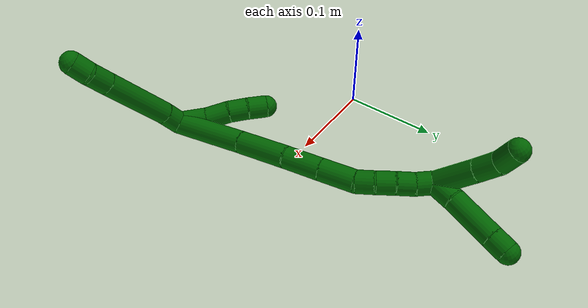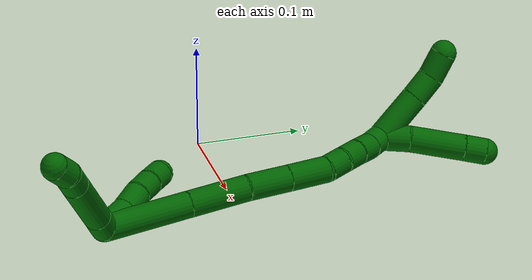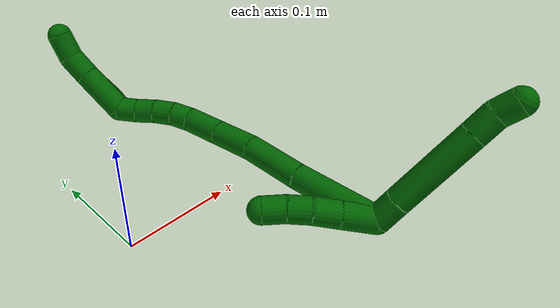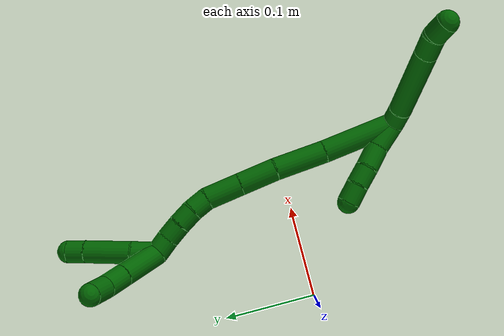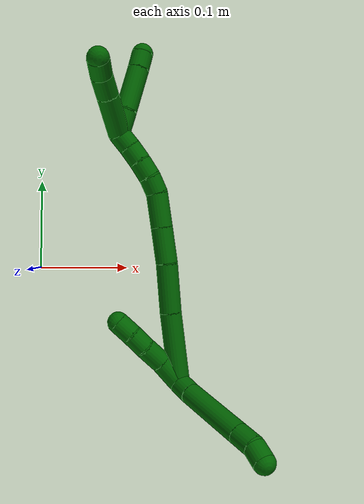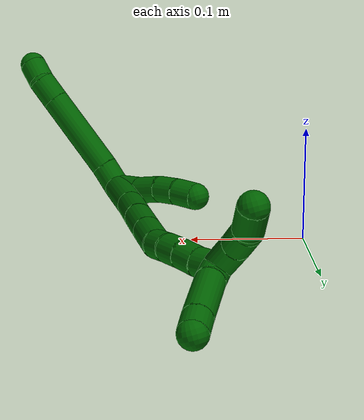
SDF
<sdf version="1.7">
 <world name="default">
  <model name="6">
   <static>0</static>
   <link name="6">
    <collision name="collision-cylinder-e_1_2_8">
     <pose>0.003053 -0.002017 0.011845 0.168653 0.248828 0.021141</pose>
     <geometry><cylinder><radius>0.0125</radius><length>0.024794</length></cylinder></geometry>
     <surface>
      <friction><ode><mu>1.16</mu><mu2>1.16</mu2><slip1>0</slip1><slip2>0</slip2></ode></friction>
      <contact><ode><kp>1e+06</kp><kd>1</kd><max_vel>0</max_vel><min_depth>0.001</min_depth></ode></contact>
     </surface>
    </collision>
    <visual name="visual-cylinder-e_1_2_8">
     <pose>0.003053 -0.002017 0.011845 0.168653 0.248828 0.021141</pose>
     <geometry><cylinder><radius>0.0125</radius><length>0.024794</length></cylinder></geometry>
     <material><ambient>0 0.392157 0.003922 1</ambient></material>
    </visual>
    <collision name="collision-cylinder-e_2_8_9">
     <pose>0.018872 -0.011158 0.061481 0.186331 0.320512 0.030204</pose>
     <geometry><cylinder><radius>0.0125</radius><length>0.081043</length></cylinder></geometry>
     <surface>
      <friction><ode><mu>1.16</mu><mu2>1.16</mu2><slip1>0</slip1><slip2>0</slip2></ode></friction>
      <contact><ode><kp>1e+06</kp><kd>1</kd><max_vel>0</max_vel><min_depth>0.001</min_depth></ode></contact>
     </surface>
    </collision>
    <visual name="visual-cylinder-e_2_8_9">
     <pose>0.018872 -0.011158 0.061481 0.186331 0.320512 0.030204</pose>
     <geometry><cylinder><radius>0.0125</radius><length>0.081043</length></cylinder></geometry>
     <material><ambient>0 0.392157 0.003922 1</ambient></material>
    </visual>
    <collision name="collision-cylinder-e_3_9_10">
     <pose>0.035406 -0.020318 0.110498 0.179441 0.318982 0.02894</pose>
     <geometry><cylinder><radius>0.0125</radius><length>0.024027</length></cylinder></geometry>
     <surface>
      <friction><ode><mu>1.16</mu><mu2>1.16</mu2><slip1>0</slip1><slip2>0</slip2></ode></friction>
      <contact><ode><kp>1e+06</kp><kd>1</kd><max_vel>0</max_vel><min_depth>0.001</min_depth></ode></contact>
     </surface>
    </collision>
    <visual name="visual-cylinder-e_3_9_10">
     <pose>0.035406 -0.020318 0.110498 0.179441 0.318982 0.02894</pose>
     <geometry><cylinder><radius>0.0125</radius><length>0.024027</length></cylinder></geometry>
     <material><ambient>0 0.392157 0.003922 1</ambient></material>
    </visual>
    <collision name="collision-cylinder-e_4_10_6">
     <pose>0.040233 -0.02653 0.130822 0.43019 0.105458 0.02306</pose>
     <geometry><cylinder><radius>0.0125</radius><length>0.020137</length></cylinder></geometry>
     <surface>
      <friction><ode><mu>1.16</mu><mu2>1.16</mu2><slip1>0</slip1><slip2>0</slip2></ode></friction>
      <contact><ode><kp>1e+06</kp><kd>1</kd><max_vel>0</max_vel><min_depth>0.001</min_depth></ode></contact>
     </surface>
    </collision>
    <visual name="visual-cylinder-e_4_10_6">
     <pose>0.040233 -0.02653 0.130822 0.43019 0.105458 0.02306</pose>
     <geometry><cylinder><radius>0.0125</radius><length>0.020137</length></cylinder></geometry>
     <material><ambient>0 0.392157 0.003922 1</ambient></material>
    </visual>
    <collision name="collision-cylinder-e_1_2_11">
     <pose>-0.007134 0.013384 -0.004615 -1.90287 -0.466763 0.643665</pose>
     <geometry><cylinder><radius>0.0125</radius><length>0.031707</length></cylinder></geometry>
     <surface>
      <friction><ode><mu>1.16</mu><mu2>1.16</mu2><slip1>0</slip1><slip2>0</slip2></ode></friction>
      <contact><ode><kp>1e+06</kp><kd>1</kd><max_vel>0</max_vel><min_depth>0.001</min_depth></ode></contact>
     </surface>
    </collision>
    <visual name="visual-cylinder-e_1_2_11">
     <pose>-0.007134 0.013384 -0.004615 -1.90287 -0.466763 0.643665</pose>
     <geometry><cylinder><radius>0.0125</radius><length>0.031707</length></cylinder></geometry>
     <material><ambient>0 0.392157 0.003922 1</ambient></material>
    </visual>
    <collision name="collision-cylinder-e_2_11_12">
     <pose>-0.021342 0.03726 -0.011686 -1.80069 -0.580955 0.720992</pose>
     <geometry><cylinder><radius>0.0125</radius><length>0.025781</length></cylinder></geometry>
     <surface>
      <friction><ode><mu>1.16</mu><mu2>1.16</mu2><slip1>0</slip1><slip2>0</slip2></ode></friction>
      <contact><ode><kp>1e+06</kp><kd>1</kd><max_vel>0</max_vel><min_depth>0.001</min_depth></ode></contact>
     </surface>
    </collision>
    <visual name="visual-cylinder-e_2_11_12">
     <pose>-0.021342 0.03726 -0.011686 -1.80069 -0.580955 0.720992</pose>
     <geometry><cylinder><radius>0.0125</radius><length>0.025781</length></cylinder></geometry>
     <material><ambient>0 0.392157 0.003922 1</ambient></material>
    </visual>
    <collision name="collision-cylinder-e_3_12_13">
     <pose>-0.033847 0.056224 -0.017644 -1.96284 -0.534771 0.777676</pose>
     <geometry><cylinder><radius>0.0125</radius><length>0.021309</length></cylinder></geometry>
     <surface>
      <friction><ode><mu>1.16</mu><mu2>1.16</mu2><slip1>0</slip1><slip2>0</slip2></ode></friction>
      <contact><ode><kp>1e+06</kp><kd>1</kd><max_vel>0</max_vel><min_depth>0.001</min_depth></ode></contact>
     </surface>
    </collision>
    <visual name="visual-cylinder-e_3_12_13">
     <pose>-0.033847 0.056224 -0.017644 -1.96284 -0.534771 0.777676</pose>
     <geometry><cylinder><radius>0.0125</radius><length>0.021309</length></cylinder></geometry>
     <material><ambient>0 0.392157 0.003922 1</ambient></material>
    </visual>
    <collision name="collision-cylinder-e_4_13_5">
     <pose>-0.044924 0.072454 -0.025654 -2.09705 -0.561752 0.92927</pose>
     <geometry><cylinder><radius>0.0125</radius><length>0.021204</length></cylinder></geometry>
     <surface>
      <friction><ode><mu>1.16</mu><mu2>1.16</mu2><slip1>0</slip1><slip2>0</slip2></ode></friction>
      <contact><ode><kp>1e+06</kp><kd>1</kd><max_vel>0</max_vel><min_depth>0.001</min_depth></ode></contact>
     </surface>
    </collision>
    <visual name="visual-cylinder-e_4_13_5">
     <pose>-0.044924 0.072454 -0.025654 -2.09705 -0.561752 0.92927</pose>
     <geometry><cylinder><radius>0.0125</radius><length>0.021204</length></cylinder></geometry>
     <material><ambient>0 0.392157 0.003922 1</ambient></material>
    </visual>
    <collision name="collision-cylinder-e_1_2_14">
     <pose>0.004983 0.039275 -0.010763 -1.83827 0.121762 -0.159477</pose>
     <geometry><cylinder><radius>0.0125</radius><length>0.082054</length></cylinder></geometry>
     <surface>
      <friction><ode><mu>1.16</mu><mu2>1.16</mu2><slip1>0</slip1><slip2>0</slip2></ode></friction>
      <contact><ode><kp>1e+06</kp><kd>1</kd><max_vel>0</max_vel><min_depth>0.001</min_depth></ode></contact>
     </surface>
    </collision>
    <visual name="visual-cylinder-e_1_2_14">
     <pose>0.004983 0.039275 -0.010763 -1.83827 0.121762 -0.159477</pose>
     <geometry><cylinder><radius>0.0125</radius><length>0.082054</length></cylinder></geometry>
     <material><ambient>0 0.392157 0.003922 1</ambient></material>
    </visual>
    <collision name="collision-cylinder-e_2_14_15">
     <pose>0.01442 0.105845 -0.028089 -1.80678 0.157346 -0.199415</pose>
     <geometry><cylinder><radius>0.0125</radius><length>0.056849</length></cylinder></geometry>
     <surface>
      <friction><ode><mu>1.16</mu><mu2>1.16</mu2><slip1>0</slip1><slip2>0</slip2></ode></friction>
      <contact><ode><kp>1e+06</kp><kd>1</kd><max_vel>0</max_vel><min_depth>0.001</min_depth></ode></contact>
     </surface>
    </collision>
    <visual name="visual-cylinder-e_2_14_15">
     <pose>0.01442 0.105845 -0.028089 -1.80678 0.157346 -0.199415</pose>
     <geometry><cylinder><radius>0.0125</radius><length>0.056849</length></cylinder></geometry>
     <material><ambient>0 0.392157 0.003922 1</ambient></material>
    </visual>
    <collision name="collision-cylinder-e_3_15_16">
     <pose>0.021273 0.152433 -0.041341 -1.9045 0.116957 -0.16415</pose>
     <geometry><cylinder><radius>0.0125</radius><length>0.041118</length></cylinder></geometry>
     <surface>
      <friction><ode><mu>1.16</mu><mu2>1.16</mu2><slip1>0</slip1><slip2>0</slip2></ode></friction>
      <contact><ode><kp>1e+06</kp><kd>1</kd><max_vel>0</max_vel><min_depth>0.001</min_depth></ode></contact>
     </surface>
    </collision>
    <visual name="visual-cylinder-e_3_15_16">
     <pose>0.021273 0.152433 -0.041341 -1.9045 0.116957 -0.16415</pose>
     <geometry><cylinder><radius>0.0125</radius><length>0.041118</length></cylinder></geometry>
     <material><ambient>0 0.392157 0.003922 1</ambient></material>
    </visual>
    <collision name="collision-cylinder-e_4_16_17">
     <pose>0.025886 0.190256 -0.054373 -1.90066 0.112555 -0.157345</pose>
     <geometry><cylinder><radius>0.0125</radius><length>0.039424</length></cylinder></geometry>
     <surface>
      <friction><ode><mu>1.16</mu><mu2>1.16</mu2><slip1>0</slip1><slip2>0</slip2></ode></friction>
      <contact><ode><kp>1e+06</kp><kd>1</kd><max_vel>0</max_vel><min_depth>0.001</min_depth></ode></contact>
     </surface>
    </collision>
    <visual name="visual-cylinder-e_4_16_17">
     <pose>0.025886 0.190256 -0.054373 -1.90066 0.112555 -0.157345</pose>
     <geometry><cylinder><radius>0.0125</radius><length>0.039424</length></cylinder></geometry>
     <material><ambient>0 0.392157 0.003922 1</ambient></material>
    </visual>
    <collision name="collision-cylinder-e_5_17_18">
     <pose>0.026315 0.218339 -0.063373 -1.84194 -0.178133 0.233956</pose>
     <geometry><cylinder><radius>0.0125</radius><length>0.020148</length></cylinder></geometry>
     <surface>
      <friction><ode><mu>1.16</mu><mu2>1.16</mu2><slip1>0</slip1><slip2>0</slip2></ode></friction>
      <contact><ode><kp>1e+06</kp><kd>1</kd><max_vel>0</max_vel><min_depth>0.001</min_depth></ode></contact>
     </surface>
    </collision>
    <visual name="visual-cylinder-e_5_17_18">
     <pose>0.026315 0.218339 -0.063373 -1.84194 -0.178133 0.233956</pose>
     <geometry><cylinder><radius>0.0125</radius><length>0.020148</length></cylinder></geometry>
     <material><ambient>0 0.392157 0.003922 1</ambient></material>
    </visual>
    <collision name="collision-cylinder-e_6_18_19">
     <pose>0.021575 0.236738 -0.069877 -1.98116 -0.297271 0.449178</pose>
     <geometry><cylinder><radius>0.0125</radius><length>0.02018</length></cylinder></geometry>
     <surface>
      <friction><ode><mu>1.16</mu><mu2>1.16</mu2><slip1>0</slip1><slip2>0</slip2></ode></friction>
      <contact><ode><kp>1e+06</kp><kd>1</kd><max_vel>0</max_vel><min_depth>0.001</min_depth></ode></contact>
     </surface>
    </collision>
    <visual name="visual-cylinder-e_6_18_19">
     <pose>0.021575 0.236738 -0.069877 -1.98116 -0.297271 0.449178</pose>
     <geometry><cylinder><radius>0.0125</radius><length>0.02018</length></cylinder></geometry>
     <material><ambient>0 0.392157 0.003922 1</ambient></material>
    </visual>
    <collision name="collision-cylinder-e_7_19_20">
     <pose>0.015349 0.253839 -0.078372 -2.08349 -0.332452 0.558915</pose>
     <geometry><cylinder><radius>0.0125</radius><length>0.02004</length></cylinder></geometry>
     <surface>
      <friction><ode><mu>1.16</mu><mu2>1.16</mu2><slip1>0</slip1><slip2>0</slip2></ode></friction>
      <contact><ode><kp>1e+06</kp><kd>1</kd><max_vel>0</max_vel><min_depth>0.001</min_depth></ode></contact>
     </surface>
    </collision>
    <visual name="visual-cylinder-e_7_19_20">
     <pose>0.015349 0.253839 -0.078372 -2.08349 -0.332452 0.558915</pose>
     <geometry><cylinder><radius>0.0125</radius><length>0.02004</length></cylinder></geometry>
     <material><ambient>0 0.392157 0.003922 1</ambient></material>
    </visual>
    <collision name="collision-cylinder-e_8_20_1">
     <pose>0.007981 0.270601 -0.086581 -1.96737 -0.41801 0.617173</pose>
     <geometry><cylinder><radius>0.0125</radius><length>0.020188</length></cylinder></geometry>
     <surface>
      <friction><ode><mu>1.16</mu><mu2>1.16</mu2><slip1>0</slip1><slip2>0</slip2></ode></friction>
      <contact><ode><kp>1e+06</kp><kd>1</kd><max_vel>0</max_vel><min_depth>0.001</min_depth></ode></contact>
     </surface>
    </collision>
    <visual name="visual-cylinder-e_8_20_1">
     <pose>0.007981 0.270601 -0.086581 -1.96737 -0.41801 0.617173</pose>
     <geometry><cylinder><radius>0.0125</radius><length>0.020188</length></cylinder></geometry>
     <material><ambient>0 0.392157 0.003922 1</ambient></material>
    </visual>
    <collision name="collision-cylinder-e_1_1_21">
     <pose>0.000388 0.302307 -0.083215 -1.28052 -0.143422 0.106924</pose>
     <geometry><cylinder><radius>0.0125</radius><length>0.048922</length></cylinder></geometry>
     <surface>
      <friction><ode><mu>1.16</mu><mu2>1.16</mu2><slip1>0</slip1><slip2>0</slip2></ode></friction>
      <contact><ode><kp>1e+06</kp><kd>1</kd><max_vel>0</max_vel><min_depth>0.001</min_depth></ode></contact>
     </surface>
    </collision>
    <visual name="visual-cylinder-e_1_1_21">
     <pose>0.000388 0.302307 -0.083215 -1.28052 -0.143422 0.106924</pose>
     <geometry><cylinder><radius>0.0125</radius><length>0.048922</length></cylinder></geometry>
     <material><ambient>0 0.392157 0.003922 1</ambient></material>
    </visual>
    <collision name="collision-cylinder-e_2_21_22">
     <pose>-0.005014 0.337499 -0.072231 -1.24477 -0.149333 0.107245</pose>
     <geometry><cylinder><radius>0.0125</radius><length>0.025608</length></cylinder></geometry>
     <surface>
      <friction><ode><mu>1.16</mu><mu2>1.16</mu2><slip1>0</slip1><slip2>0</slip2></ode></friction>
      <contact><ode><kp>1e+06</kp><kd>1</kd><max_vel>0</max_vel><min_depth>0.001</min_depth></ode></contact>
     </surface>
    </collision>
    <visual name="visual-cylinder-e_2_21_22">
     <pose>-0.005014 0.337499 -0.072231 -1.24477 -0.149333 0.107245</pose>
     <geometry><cylinder><radius>0.0125</radius><length>0.025608</length></cylinder></geometry>
     <material><ambient>0 0.392157 0.003922 1</ambient></material>
    </visual>
    <collision name="collision-cylinder-e_3_22_4">
     <pose>-0.008268 0.359468 -0.060374 -0.907004 -0.106176 0.051785</pose>
     <geometry><cylinder><radius>0.0125</radius><length>0.025469</length></cylinder></geometry>
     <surface>
      <friction><ode><mu>1.16</mu><mu2>1.16</mu2><slip1>0</slip1><slip2>0</slip2></ode></friction>
      <contact><ode><kp>1e+06</kp><kd>1</kd><max_vel>0</max_vel><min_depth>0.001</min_depth></ode></contact>
     </surface>
    </collision>
    <visual name="visual-cylinder-e_3_22_4">
     <pose>-0.008268 0.359468 -0.060374 -0.907004 -0.106176 0.051785</pose>
     <geometry><cylinder><radius>0.0125</radius><length>0.025469</length></cylinder></geometry>
     <material><ambient>0 0.392157 0.003922 1</ambient></material>
    </visual>
    <collision name="collision-cylinder-e_1_1_23">
     <pose>0.011125 0.290127 -0.094075 -1.9135 0.554277 -0.767059</pose>
     <geometry><cylinder><radius>0.0125</radius><length>0.027515</length></cylinder></geometry>
     <surface>
      <friction><ode><mu>1.16</mu><mu2>1.16</mu2><slip1>0</slip1><slip2>0</slip2></ode></friction>
      <contact><ode><kp>1e+06</kp><kd>1</kd><max_vel>0</max_vel><min_depth>0.001</min_depth></ode></contact>
     </surface>
    </collision>
    <visual name="visual-cylinder-e_1_1_23">
     <pose>0.011125 0.290127 -0.094075 -1.9135 0.554277 -0.767059</pose>
     <geometry><cylinder><radius>0.0125</radius><length>0.027515</length></cylinder></geometry>
     <material><ambient>0 0.392157 0.003922 1</ambient></material>
    </visual>
    <collision name="collision-cylinder-e_2_23_24">
     <pose>0.03199 0.320709 -0.108429 -2.06029 0.551088 -0.880324</pose>
     <geometry><cylinder><radius>0.0125</radius><length>0.052039</length></cylinder></geometry>
     <surface>
      <friction><ode><mu>1.16</mu><mu2>1.16</mu2><slip1>0</slip1><slip2>0</slip2></ode></friction>
      <contact><ode><kp>1e+06</kp><kd>1</kd><max_vel>0</max_vel><min_depth>0.001</min_depth></ode></contact>
     </surface>
    </collision>
    <visual name="visual-cylinder-e_2_23_24">
     <pose>0.03199 0.320709 -0.108429 -2.06029 0.551088 -0.880324</pose>
     <geometry><cylinder><radius>0.0125</radius><length>0.052039</length></cylinder></geometry>
     <material><ambient>0 0.392157 0.003922 1</ambient></material>
    </visual>
    <collision name="collision-cylinder-e_3_24_3">
     <pose>0.050752 0.34793 -0.123266 -2.09379 0.526596 -0.873074</pose>
     <geometry><cylinder><radius>0.0125</radius><length>0.020447</length></cylinder></geometry>
     <surface>
      <friction><ode><mu>1.16</mu><mu2>1.16</mu2><slip1>0</slip1><slip2>0</slip2></ode></friction>
      <contact><ode><kp>1e+06</kp><kd>1</kd><max_vel>0</max_vel><min_depth>0.001</min_depth></ode></contact>
     </surface>
    </collision>
    <visual name="visual-cylinder-e_3_24_3">
     <pose>0.050752 0.34793 -0.123266 -2.09379 0.526596 -0.873074</pose>
     <geometry><cylinder><radius>0.0125</radius><length>0.020447</length></cylinder></geometry>
     <material><ambient>0 0.392157 0.003922 1</ambient></material>
    </visual>
    <collision name="collision-sphere-3">
     <pose>0.05589 0.355587 -0.12768 0 -0 0</pose>
     <geometry><sphere><radius>0.0125</radius></sphere></geometry>
     <surface>
      <friction><ode><mu>1.16</mu><mu2>1.16</mu2><slip1>0</slip1><slip2>0</slip2></ode></friction>
      <contact><ode><kp>1e+06</kp><kd>1</kd><max_vel>0</max_vel><min_depth>0.001</min_depth></ode></contact>
     </surface>
    </collision>
    <visual name="visual-sphere-3">
     <pose>0.05589 0.355587 -0.12768 0 -0 0</pose>
     <geometry><sphere><radius>0.0125</radius></sphere></geometry>
     <material><ambient>0 0.392157 0.003922 1</ambient></material>
    </visual>
    <collision name="collision-sphere-24">
     <pose>0.045614 0.340273 -0.118851 0 -0 0</pose>
     <geometry><sphere><radius>0.0125</radius></sphere></geometry>
     <surface>
      <friction><ode><mu>1.16</mu><mu2>1.16</mu2><slip1>0</slip1><slip2>0</slip2></ode></friction>
      <contact><ode><kp>1e+06</kp><kd>1</kd><max_vel>0</max_vel><min_depth>0.001</min_depth></ode></contact>
     </surface>
    </collision>
    <visual name="visual-sphere-24">
     <pose>0.045614 0.340273 -0.118851 0 -0 0</pose>
     <geometry><sphere><radius>0.0125</radius></sphere></geometry>
     <material><ambient>0 0.392157 0.003922 1</ambient></material>
    </visual>
    <collision name="collision-sphere-23">
     <pose>0.018366 0.301145 -0.098006 0 -0 0</pose>
     <geometry><sphere><radius>0.0125</radius></sphere></geometry>
     <surface>
      <friction><ode><mu>1.16</mu><mu2>1.16</mu2><slip1>0</slip1><slip2>0</slip2></ode></friction>
      <contact><ode><kp>1e+06</kp><kd>1</kd><max_vel>0</max_vel><min_depth>0.001</min_depth></ode></contact>
     </surface>
    </collision>
    <visual name="visual-sphere-23">
     <pose>0.018366 0.301145 -0.098006 0 -0 0</pose>
     <geometry><sphere><radius>0.0125</radius></sphere></geometry>
     <material><ambient>0 0.392157 0.003922 1</ambient></material>
    </visual>
    <collision name="collision-sphere-4">
     <pose>-0.009618 0.369442 -0.052572 0 -0 0</pose>
     <geometry><sphere><radius>0.0125</radius></sphere></geometry>
     <surface>
      <friction><ode><mu>1.16</mu><mu2>1.16</mu2><slip1>0</slip1><slip2>0</slip2></ode></friction>
      <contact><ode><kp>1e+06</kp><kd>1</kd><max_vel>0</max_vel><min_depth>0.001</min_depth></ode></contact>
     </surface>
    </collision>
    <visual name="visual-sphere-4">
     <pose>-0.009618 0.369442 -0.052572 0 -0 0</pose>
     <geometry><sphere><radius>0.0125</radius></sphere></geometry>
     <material><ambient>0 0.392157 0.003922 1</ambient></material>
    </visual>
    <collision name="collision-sphere-22">
     <pose>-0.006918 0.349493 -0.068175 0 -0 0</pose>
     <geometry><sphere><radius>0.0125</radius></sphere></geometry>
     <surface>
      <friction><ode><mu>1.16</mu><mu2>1.16</mu2><slip1>0</slip1><slip2>0</slip2></ode></friction>
      <contact><ode><kp>1e+06</kp><kd>1</kd><max_vel>0</max_vel><min_depth>0.001</min_depth></ode></contact>
     </surface>
    </collision>
    <visual name="visual-sphere-22">
     <pose>-0.006918 0.349493 -0.068175 0 -0 0</pose>
     <geometry><sphere><radius>0.0125</radius></sphere></geometry>
     <material><ambient>0 0.392157 0.003922 1</ambient></material>
    </visual>
    <collision name="collision-sphere-21">
     <pose>-0.003109 0.325504 -0.076286 0 -0 0</pose>
     <geometry><sphere><radius>0.0125</radius></sphere></geometry>
     <surface>
      <friction><ode><mu>1.16</mu><mu2>1.16</mu2><slip1>0</slip1><slip2>0</slip2></ode></friction>
      <contact><ode><kp>1e+06</kp><kd>1</kd><max_vel>0</max_vel><min_depth>0.001</min_depth></ode></contact>
     </surface>
    </collision>
    <visual name="visual-sphere-21">
     <pose>-0.003109 0.325504 -0.076286 0 -0 0</pose>
     <geometry><sphere><radius>0.0125</radius></sphere></geometry>
     <material><ambient>0 0.392157 0.003922 1</ambient></material>
    </visual>
    <collision name="collision-sphere-1">
     <pose>0.003884 0.27911 -0.090144 0 -0 0</pose>
     <geometry><sphere><radius>0.0125</radius></sphere></geometry>
     <surface>
      <friction><ode><mu>1.16</mu><mu2>1.16</mu2><slip1>0</slip1><slip2>0</slip2></ode></friction>
      <contact><ode><kp>1e+06</kp><kd>1</kd><max_vel>0</max_vel><min_depth>0.001</min_depth></ode></contact>
     </surface>
    </collision>
    <visual name="visual-sphere-1">
     <pose>0.003884 0.27911 -0.090144 0 -0 0</pose>
     <geometry><sphere><radius>0.0125</radius></sphere></geometry>
     <material><ambient>0 0.392157 0.003922 1</ambient></material>
    </visual>
    <collision name="collision-sphere-11">
     <pose>-0.014268 0.026768 -0.009231 0 -0 0</pose>
     <geometry><sphere><radius>0.0125</radius></sphere></geometry>
     <surface>
      <friction><ode><mu>1.16</mu><mu2>1.16</mu2><slip1>0</slip1><slip2>0</slip2></ode></friction>
      <contact><ode><kp>1e+06</kp><kd>1</kd><max_vel>0</max_vel><min_depth>0.001</min_depth></ode></contact>
     </surface>
    </collision>
    <visual name="visual-sphere-11">
     <pose>-0.014268 0.026768 -0.009231 0 -0 0</pose>
     <geometry><sphere><radius>0.0125</radius></sphere></geometry>
     <material><ambient>0 0.392157 0.003922 1</ambient></material>
    </visual>
    <collision name="collision-sphere-6">
     <pose>0.041293 -0.030706 0.139922 0 -0 0</pose>
     <geometry><sphere><radius>0.0125</radius></sphere></geometry>
     <surface>
      <friction><ode><mu>1.16</mu><mu2>1.16</mu2><slip1>0</slip1><slip2>0</slip2></ode></friction>
      <contact><ode><kp>1e+06</kp><kd>1</kd><max_vel>0</max_vel><min_depth>0.001</min_depth></ode></contact>
     </surface>
    </collision>
    <visual name="visual-sphere-6">
     <pose>0.041293 -0.030706 0.139922 0 -0 0</pose>
     <geometry><sphere><radius>0.0125</radius></sphere></geometry>
     <material><ambient>0 0.392157 0.003922 1</ambient></material>
    </visual>
    <collision name="collision-sphere-10">
     <pose>0.039173 -0.022355 0.121722 0 -0 0</pose>
     <geometry><sphere><radius>0.0125</radius></sphere></geometry>
     <surface>
      <friction><ode><mu>1.16</mu><mu2>1.16</mu2><slip1>0</slip1><slip2>0</slip2></ode></friction>
      <contact><ode><kp>1e+06</kp><kd>1</kd><max_vel>0</max_vel><min_depth>0.001</min_depth></ode></contact>
     </surface>
    </collision>
    <visual name="visual-sphere-10">
     <pose>0.039173 -0.022355 0.121722 0 -0 0</pose>
     <geometry><sphere><radius>0.0125</radius></sphere></geometry>
     <material><ambient>0 0.392157 0.003922 1</ambient></material>
    </visual>
    <collision name="collision-sphere-9">
     <pose>0.031639 -0.018282 0.099273 0 -0 0</pose>
     <geometry><sphere><radius>0.0125</radius></sphere></geometry>
     <surface>
      <friction><ode><mu>1.16</mu><mu2>1.16</mu2><slip1>0</slip1><slip2>0</slip2></ode></friction>
      <contact><ode><kp>1e+06</kp><kd>1</kd><max_vel>0</max_vel><min_depth>0.001</min_depth></ode></contact>
     </surface>
    </collision>
    <visual name="visual-sphere-9">
     <pose>0.031639 -0.018282 0.099273 0 -0 0</pose>
     <geometry><sphere><radius>0.0125</radius></sphere></geometry>
     <material><ambient>0 0.392157 0.003922 1</ambient></material>
    </visual>
    <collision name="collision-sphere-2">
     <geometry><sphere><radius>0.0125</radius></sphere></geometry>
     <surface>
      <friction><ode><mu>1.16</mu><mu2>1.16</mu2><slip1>0</slip1><slip2>0</slip2></ode></friction>
      <contact><ode><kp>1e+06</kp><kd>1</kd><max_vel>0</max_vel><min_depth>0.001</min_depth></ode></contact>
     </surface>
    </collision>
    <visual name="visual-sphere-2">
     <geometry><sphere><radius>0.0125</radius></sphere></geometry>
     <material><ambient>0 0.392157 0.003922 1</ambient></material>
    </visual>
    <collision name="collision-sphere-19">
     <pose>0.018619 0.245585 -0.073726 0 -0 0</pose>
     <geometry><sphere><radius>0.0125</radius></sphere></geometry>
     <surface>
      <friction><ode><mu>1.16</mu><mu2>1.16</mu2><slip1>0</slip1><slip2>0</slip2></ode></friction>
      <contact><ode><kp>1e+06</kp><kd>1</kd><max_vel>0</max_vel><min_depth>0.001</min_depth></ode></contact>
     </surface>
    </collision>
    <visual name="visual-sphere-19">
     <pose>0.018619 0.245585 -0.073726 0 -0 0</pose>
     <geometry><sphere><radius>0.0125</radius></sphere></geometry>
     <material><ambient>0 0.392157 0.003922 1</ambient></material>
    </visual>
    <collision name="collision-sphere-8">
     <pose>0.006106 -0.004034 0.023689 0 -0 0</pose>
     <geometry><sphere><radius>0.0125</radius></sphere></geometry>
     <surface>
      <friction><ode><mu>1.16</mu><mu2>1.16</mu2><slip1>0</slip1><slip2>0</slip2></ode></friction>
      <contact><ode><kp>1e+06</kp><kd>1</kd><max_vel>0</max_vel><min_depth>0.001</min_depth></ode></contact>
     </surface>
    </collision>
    <visual name="visual-sphere-8">
     <pose>0.006106 -0.004034 0.023689 0 -0 0</pose>
     <geometry><sphere><radius>0.0125</radius></sphere></geometry>
     <material><ambient>0 0.392157 0.003922 1</ambient></material>
    </visual>
    <collision name="collision-sphere-12">
     <pose>-0.028417 0.047752 -0.014142 0 -0 0</pose>
     <geometry><sphere><radius>0.0125</radius></sphere></geometry>
     <surface>
      <friction><ode><mu>1.16</mu><mu2>1.16</mu2><slip1>0</slip1><slip2>0</slip2></ode></friction>
      <contact><ode><kp>1e+06</kp><kd>1</kd><max_vel>0</max_vel><min_depth>0.001</min_depth></ode></contact>
     </surface>
    </collision>
    <visual name="visual-sphere-12">
     <pose>-0.028417 0.047752 -0.014142 0 -0 0</pose>
     <geometry><sphere><radius>0.0125</radius></sphere></geometry>
     <material><ambient>0 0.392157 0.003922 1</ambient></material>
    </visual>
    <collision name="collision-sphere-13">
     <pose>-0.039277 0.064695 -0.021147 0 -0 0</pose>
     <geometry><sphere><radius>0.0125</radius></sphere></geometry>
     <surface>
      <friction><ode><mu>1.16</mu><mu2>1.16</mu2><slip1>0</slip1><slip2>0</slip2></ode></friction>
      <contact><ode><kp>1e+06</kp><kd>1</kd><max_vel>0</max_vel><min_depth>0.001</min_depth></ode></contact>
     </surface>
    </collision>
    <visual name="visual-sphere-13">
     <pose>-0.039277 0.064695 -0.021147 0 -0 0</pose>
     <geometry><sphere><radius>0.0125</radius></sphere></geometry>
     <material><ambient>0 0.392157 0.003922 1</ambient></material>
    </visual>
    <collision name="collision-sphere-5">
     <pose>-0.050571 0.080212 -0.03016 0 -0 0</pose>
     <geometry><sphere><radius>0.0125</radius></sphere></geometry>
     <surface>
      <friction><ode><mu>1.16</mu><mu2>1.16</mu2><slip1>0</slip1><slip2>0</slip2></ode></friction>
      <contact><ode><kp>1e+06</kp><kd>1</kd><max_vel>0</max_vel><min_depth>0.001</min_depth></ode></contact>
     </surface>
    </collision>
    <visual name="visual-sphere-5">
     <pose>-0.050571 0.080212 -0.03016 0 -0 0</pose>
     <geometry><sphere><radius>0.0125</radius></sphere></geometry>
     <material><ambient>0 0.392157 0.003922 1</ambient></material>
    </visual>
    <collision name="collision-sphere-14">
     <pose>0.009966 0.07855 -0.021526 0 -0 0</pose>
     <geometry><sphere><radius>0.0125</radius></sphere></geometry>
     <surface>
      <friction><ode><mu>1.16</mu><mu2>1.16</mu2><slip1>0</slip1><slip2>0</slip2></ode></friction>
      <contact><ode><kp>1e+06</kp><kd>1</kd><max_vel>0</max_vel><min_depth>0.001</min_depth></ode></contact>
     </surface>
    </collision>
    <visual name="visual-sphere-14">
     <pose>0.009966 0.07855 -0.021526 0 -0 0</pose>
     <geometry><sphere><radius>0.0125</radius></sphere></geometry>
     <material><ambient>0 0.392157 0.003922 1</ambient></material>
    </visual>
    <collision name="collision-sphere-15">
     <pose>0.018874 0.13314 -0.034653 0 -0 0</pose>
     <geometry><sphere><radius>0.0125</radius></sphere></geometry>
     <surface>
      <friction><ode><mu>1.16</mu><mu2>1.16</mu2><slip1>0</slip1><slip2>0</slip2></ode></friction>
      <contact><ode><kp>1e+06</kp><kd>1</kd><max_vel>0</max_vel><min_depth>0.001</min_depth></ode></contact>
     </surface>
    </collision>
    <visual name="visual-sphere-15">
     <pose>0.018874 0.13314 -0.034653 0 -0 0</pose>
     <geometry><sphere><radius>0.0125</radius></sphere></geometry>
     <material><ambient>0 0.392157 0.003922 1</ambient></material>
    </visual>
    <collision name="collision-sphere-16">
     <pose>0.023672 0.171725 -0.048029 0 -0 0</pose>
     <geometry><sphere><radius>0.0125</radius></sphere></geometry>
     <surface>
      <friction><ode><mu>1.16</mu><mu2>1.16</mu2><slip1>0</slip1><slip2>0</slip2></ode></friction>
      <contact><ode><kp>1e+06</kp><kd>1</kd><max_vel>0</max_vel><min_depth>0.001</min_depth></ode></contact>
     </surface>
    </collision>
    <visual name="visual-sphere-16">
     <pose>0.023672 0.171725 -0.048029 0 -0 0</pose>
     <geometry><sphere><radius>0.0125</radius></sphere></geometry>
     <material><ambient>0 0.392157 0.003922 1</ambient></material>
    </visual>
    <collision name="collision-sphere-17">
     <pose>0.0281 0.208787 -0.060718 0 -0 0</pose>
     <geometry><sphere><radius>0.0125</radius></sphere></geometry>
     <surface>
      <friction><ode><mu>1.16</mu><mu2>1.16</mu2><slip1>0</slip1><slip2>0</slip2></ode></friction>
      <contact><ode><kp>1e+06</kp><kd>1</kd><max_vel>0</max_vel><min_depth>0.001</min_depth></ode></contact>
     </surface>
    </collision>
    <visual name="visual-sphere-17">
     <pose>0.0281 0.208787 -0.060718 0 -0 0</pose>
     <geometry><sphere><radius>0.0125</radius></sphere></geometry>
     <material><ambient>0 0.392157 0.003922 1</ambient></material>
    </visual>
    <collision name="collision-sphere-18">
     <pose>0.02453 0.227892 -0.066029 0 -0 0</pose>
     <geometry><sphere><radius>0.0125</radius></sphere></geometry>
     <surface>
      <friction><ode><mu>1.16</mu><mu2>1.16</mu2><slip1>0</slip1><slip2>0</slip2></ode></friction>
      <contact><ode><kp>1e+06</kp><kd>1</kd><max_vel>0</max_vel><min_depth>0.001</min_depth></ode></contact>
     </surface>
    </collision>
    <visual name="visual-sphere-18">
     <pose>0.02453 0.227892 -0.066029 0 -0 0</pose>
     <geometry><sphere><radius>0.0125</radius></sphere></geometry>
     <material><ambient>0 0.392157 0.003922 1</ambient></material>
    </visual>
    <collision name="collision-sphere-20">
     <pose>0.012079 0.262092 -0.083018 0 -0 0</pose>
     <geometry><sphere><radius>0.0125</radius></sphere></geometry>
     <surface>
      <friction><ode><mu>1.16</mu><mu2>1.16</mu2><slip1>0</slip1><slip2>0</slip2></ode></friction>
      <contact><ode><kp>1e+06</kp><kd>1</kd><max_vel>0</max_vel><min_depth>0.001</min_depth></ode></contact>
     </surface>
    </collision>
    <visual name="visual-sphere-20">
     <pose>0.012079 0.262092 -0.083018 0 -0 0</pose>
     <geometry><sphere><radius>0.0125</radius></sphere></geometry>
     <material><ambient>0 0.392157 0.003922 1</ambient></material>
    </visual>
    <inertial>
     <pose>0.01075 0.145668 -0.028454 0 -0 0</pose>
     <mass>0.75</mass>
     <inertia>
      <ixx>0.000156</ixx>
      <ixy>0</ixy>
      <ixz>0</ixz>
      <iyy>6.4e-05</iyy>
      <iyz>0</iyz>
      <izz>-0.000135</izz>
     </inertia>
    </inertial>
   </link>
   <pose>0.161973 -0.130927 0.011705 0.371639 0.184934 0.269447</pose>
  </model>
 </world>
</sdf>
